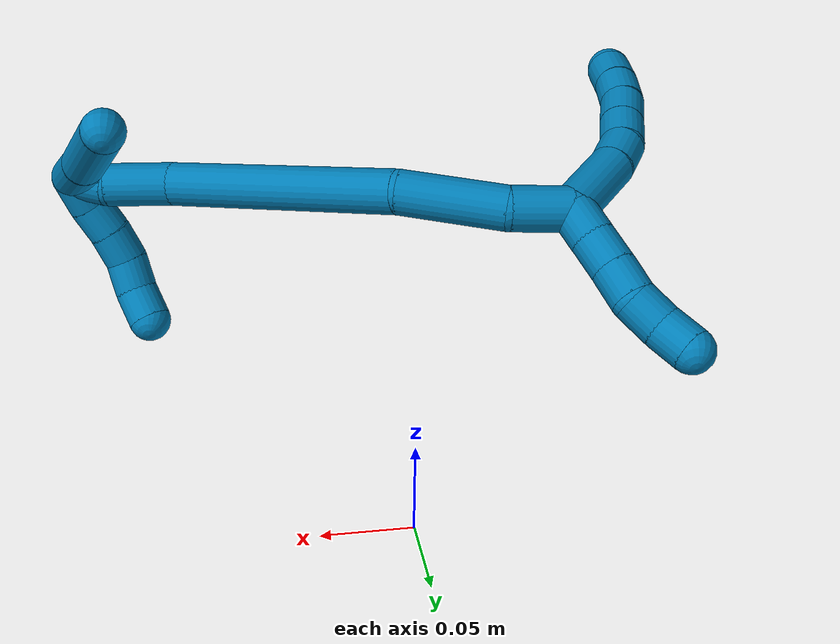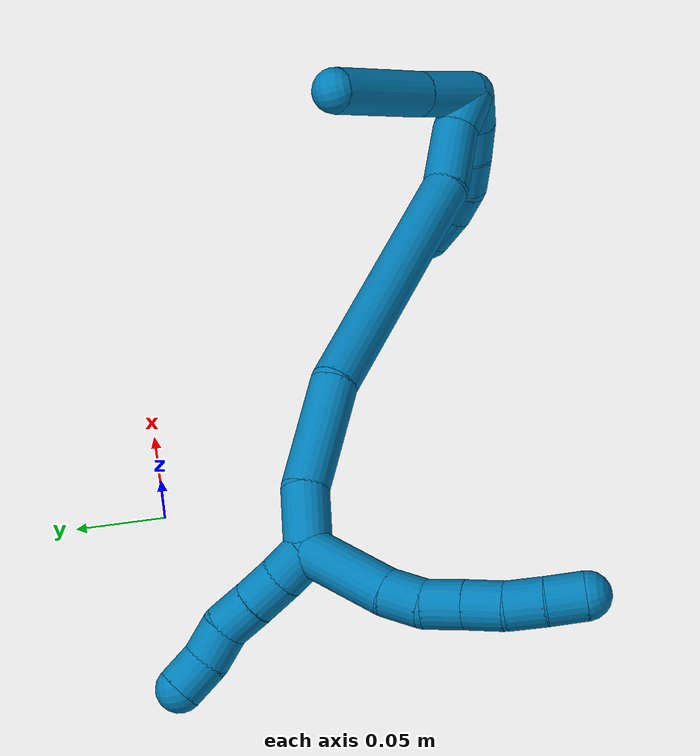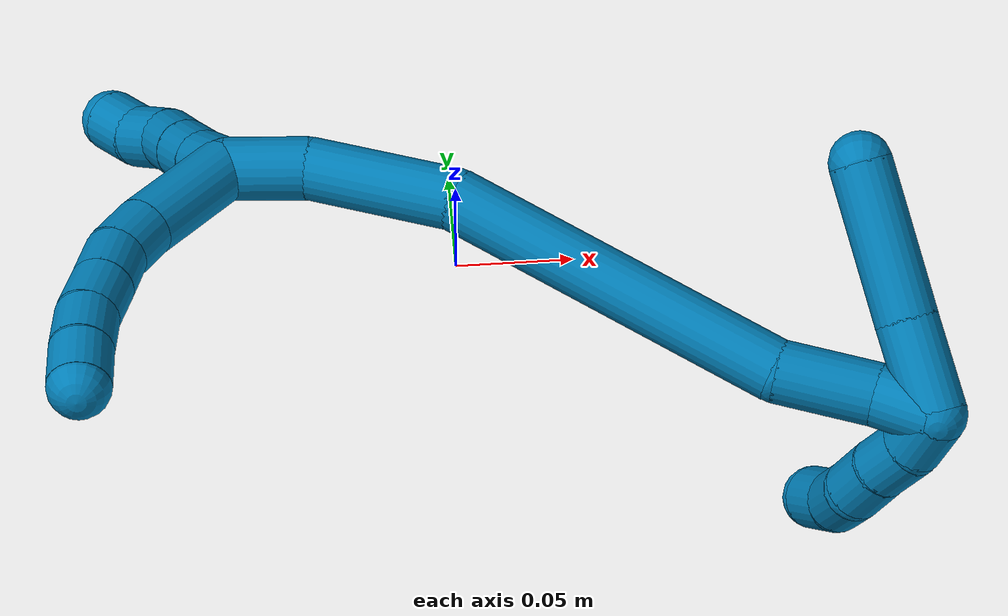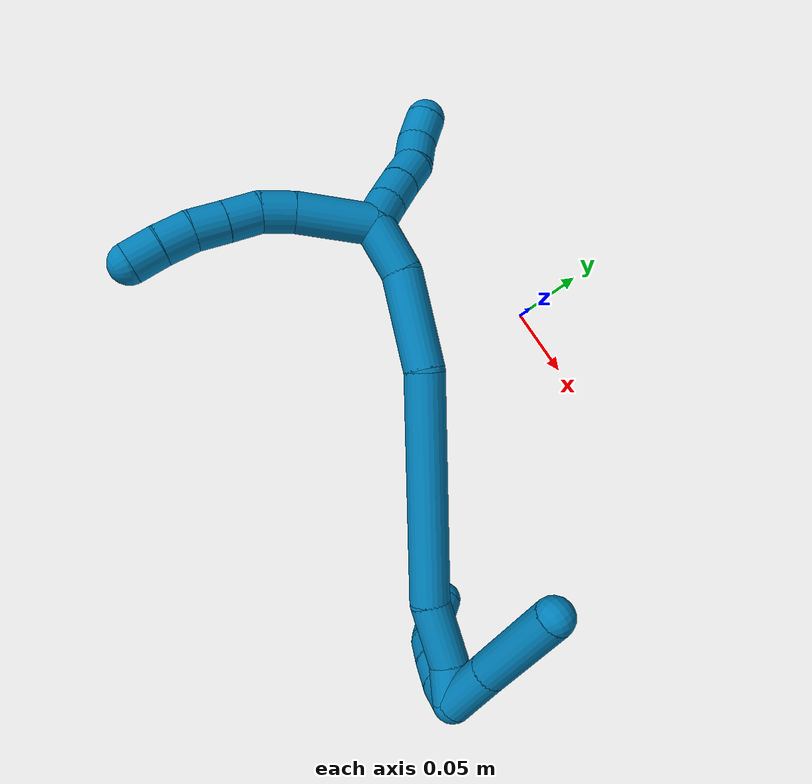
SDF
<sdf version="1.7">
 <world name="default">
  <model name="9">
   <static>0</static>
   <link name="9">
    <collision name="collision-cylinder-e_1_2_8">
     <pose>-0.014514 0.002232 0.018981 -0.117075 -0.649505 0.039456</pose>
     <geometry><cylinder><radius>0.0125</radius><length>0.047996</length></cylinder></geometry>
     <surface>
      <friction><ode><mu>1.16</mu><mu2>1.16</mu2><slip1>0</slip1><slip2>0</slip2></ode></friction>
      <contact><ode><kp>1e+06</kp><kd>1</kd><max_vel>0</max_vel><min_depth>0.001</min_depth></ode></contact>
     </surface>
    </collision>
    <visual name="visual-cylinder-e_1_2_8">
     <pose>-0.014514 0.002232 0.018981 -0.117075 -0.649505 0.039456</pose>
     <geometry><cylinder><radius>0.0125</radius><length>0.047996</length></cylinder></geometry>
     <material><ambient>0 0.490196 0.709804 1</ambient></material>
    </visual>
    <collision name="collision-cylinder-e_2_8_9">
     <pose>-0.033796 0.00529 0.047155 -0.089495 -0.476804 0.021763</pose>
     <geometry><cylinder><radius>0.0125</radius><length>0.020779</length></cylinder></geometry>
     <surface>
      <friction><ode><mu>1.16</mu><mu2>1.16</mu2><slip1>0</slip1><slip2>0</slip2></ode></friction>
      <contact><ode><kp>1e+06</kp><kd>1</kd><max_vel>0</max_vel><min_depth>0.001</min_depth></ode></contact>
     </surface>
    </collision>
    <visual name="visual-cylinder-e_2_8_9">
     <pose>-0.033796 0.00529 0.047155 -0.089495 -0.476804 0.021763</pose>
     <geometry><cylinder><radius>0.0125</radius><length>0.020779</length></cylinder></geometry>
     <material><ambient>0 0.490196 0.709804 1</ambient></material>
    </visual>
    <collision name="collision-cylinder-e_3_9_10">
     <pose>-0.04067 0.005946 0.066514 0.016598 -0.204281 -0.001701</pose>
     <geometry><cylinder><radius>0.0125</radius><length>0.020765</length></cylinder></geometry>
     <surface>
      <friction><ode><mu>1.16</mu><mu2>1.16</mu2><slip1>0</slip1><slip2>0</slip2></ode></friction>
      <contact><ode><kp>1e+06</kp><kd>1</kd><max_vel>0</max_vel><min_depth>0.001</min_depth></ode></contact>
     </surface>
    </collision>
    <visual name="visual-cylinder-e_3_9_10">
     <pose>-0.04067 0.005946 0.066514 0.016598 -0.204281 -0.001701</pose>
     <geometry><cylinder><radius>0.0125</radius><length>0.020765</length></cylinder></geometry>
     <material><ambient>0 0.490196 0.709804 1</ambient></material>
    </visual>
    <collision name="collision-cylinder-e_4_10_11">
     <pose>-0.045059 0.005602 0.086595 0.017679 -0.226251 -0.002009</pose>
     <geometry><cylinder><radius>0.0125</radius><length>0.020352</length></cylinder></geometry>
     <surface>
      <friction><ode><mu>1.16</mu><mu2>1.16</mu2><slip1>0</slip1><slip2>0</slip2></ode></friction>
      <contact><ode><kp>1e+06</kp><kd>1</kd><max_vel>0</max_vel><min_depth>0.001</min_depth></ode></contact>
     </surface>
    </collision>
    <visual name="visual-cylinder-e_4_10_11">
     <pose>-0.045059 0.005602 0.086595 0.017679 -0.226251 -0.002009</pose>
     <geometry><cylinder><radius>0.0125</radius><length>0.020352</length></cylinder></geometry>
     <material><ambient>0 0.490196 0.709804 1</ambient></material>
    </visual>
    <collision name="collision-cylinder-e_5_11_12">
     <pose>-0.048082 0.004369 0.106479 0.105743 -0.073654 -0.0039</pose>
     <geometry><cylinder><radius>0.0125</radius><length>0.020104</length></cylinder></geometry>
     <surface>
      <friction><ode><mu>1.16</mu><mu2>1.16</mu2><slip1>0</slip1><slip2>0</slip2></ode></friction>
      <contact><ode><kp>1e+06</kp><kd>1</kd><max_vel>0</max_vel><min_depth>0.001</min_depth></ode></contact>
     </surface>
    </collision>
    <visual name="visual-cylinder-e_5_11_12">
     <pose>-0.048082 0.004369 0.106479 0.105743 -0.073654 -0.0039</pose>
     <geometry><cylinder><radius>0.0125</radius><length>0.020104</length></cylinder></geometry>
     <material><ambient>0 0.490196 0.709804 1</ambient></material>
    </visual>
    <collision name="collision-cylinder-e_6_12_6">
     <pose>-0.049198 0.001406 0.12626 0.191695 -0.037631 -0.003618</pose>
     <geometry><cylinder><radius>0.0125</radius><length>0.020003</length></cylinder></geometry>
     <surface>
      <friction><ode><mu>1.16</mu><mu2>1.16</mu2><slip1>0</slip1><slip2>0</slip2></ode></friction>
      <contact><ode><kp>1e+06</kp><kd>1</kd><max_vel>0</max_vel><min_depth>0.001</min_depth></ode></contact>
     </surface>
    </collision>
    <visual name="visual-cylinder-e_6_12_6">
     <pose>-0.049198 0.001406 0.12626 0.191695 -0.037631 -0.003618</pose>
     <geometry><cylinder><radius>0.0125</radius><length>0.020003</length></cylinder></geometry>
     <material><ambient>0 0.490196 0.709804 1</ambient></material>
    </visual>
    <collision name="collision-cylinder-e_1_2_13">
     <pose>-0.005175 -0.001402 -0.008441 2.97704 -0.543879 -2.56653</pose>
     <geometry><cylinder><radius>0.0125</radius><length>0.02</length></cylinder></geometry>
     <surface>
      <friction><ode><mu>1.16</mu><mu2>1.16</mu2><slip1>0</slip1><slip2>0</slip2></ode></friction>
      <contact><ode><kp>1e+06</kp><kd>1</kd><max_vel>0</max_vel><min_depth>0.001</min_depth></ode></contact>
     </surface>
    </collision>
    <visual name="visual-cylinder-e_1_2_13">
     <pose>-0.005175 -0.001402 -0.008441 2.97704 -0.543879 -2.56653</pose>
     <geometry><cylinder><radius>0.0125</radius><length>0.02</length></cylinder></geometry>
     <material><ambient>0 0.490196 0.709804 1</ambient></material>
    </visual>
    <collision name="collision-cylinder-e_2_13_14">
     <pose>-0.015115 -0.003723 -0.025626 3.03675 -0.496749 -2.73359</pose>
     <geometry><cylinder><radius>0.0125</radius><length>0.02</length></cylinder></geometry>
     <surface>
      <friction><ode><mu>1.16</mu><mu2>1.16</mu2><slip1>0</slip1><slip2>0</slip2></ode></friction>
      <contact><ode><kp>1e+06</kp><kd>1</kd><max_vel>0</max_vel><min_depth>0.001</min_depth></ode></contact>
     </surface>
    </collision>
    <visual name="visual-cylinder-e_2_13_14">
     <pose>-0.015115 -0.003723 -0.025626 3.03675 -0.496749 -2.73359</pose>
     <geometry><cylinder><radius>0.0125</radius><length>0.02</length></cylinder></geometry>
     <material><ambient>0 0.490196 0.709804 1</ambient></material>
    </visual>
    <collision name="collision-cylinder-e_3_14_15">
     <pose>-0.024357 -0.005692 -0.04325 3.02412 -0.46407 -2.65377</pose>
     <geometry><cylinder><radius>0.0125</radius><length>0.02</length></cylinder></geometry>
     <surface>
      <friction><ode><mu>1.16</mu><mu2>1.16</mu2><slip1>0</slip1><slip2>0</slip2></ode></friction>
      <contact><ode><kp>1e+06</kp><kd>1</kd><max_vel>0</max_vel><min_depth>0.001</min_depth></ode></contact>
     </surface>
    </collision>
    <visual name="visual-cylinder-e_3_14_15">
     <pose>-0.024357 -0.005692 -0.04325 3.02412 -0.46407 -2.65377</pose>
     <geometry><cylinder><radius>0.0125</radius><length>0.02</length></cylinder></geometry>
     <material><ambient>0 0.490196 0.709804 1</ambient></material>
    </visual>
    <collision name="collision-cylinder-e_4_15_16">
     <pose>-0.03601 -0.00773 -0.059022 2.99889 -0.800644 -2.80697</pose>
     <geometry><cylinder><radius>0.0125</radius><length>0.02</length></cylinder></geometry>
     <surface>
      <friction><ode><mu>1.16</mu><mu2>1.16</mu2><slip1>0</slip1><slip2>0</slip2></ode></friction>
      <contact><ode><kp>1e+06</kp><kd>1</kd><max_vel>0</max_vel><min_depth>0.001</min_depth></ode></contact>
     </surface>
    </collision>
    <visual name="visual-cylinder-e_4_15_16">
     <pose>-0.03601 -0.00773 -0.059022 2.99889 -0.800644 -2.80697</pose>
     <geometry><cylinder><radius>0.0125</radius><length>0.02</length></cylinder></geometry>
     <material><ambient>0 0.490196 0.709804 1</ambient></material>
    </visual>
    <collision name="collision-cylinder-e_5_16_5">
     <pose>-0.049243 -0.007417 -0.073766 -2.97718 -0.650335 2.66221</pose>
     <geometry><cylinder><radius>0.0125</radius><length>0.02</length></cylinder></geometry>
     <surface>
      <friction><ode><mu>1.16</mu><mu2>1.16</mu2><slip1>0</slip1><slip2>0</slip2></ode></friction>
      <contact><ode><kp>1e+06</kp><kd>1</kd><max_vel>0</max_vel><min_depth>0.001</min_depth></ode></contact>
     </surface>
    </collision>
    <visual name="visual-cylinder-e_5_16_5">
     <pose>-0.049243 -0.007417 -0.073766 -2.97718 -0.650335 2.66221</pose>
     <geometry><cylinder><radius>0.0125</radius><length>0.02</length></cylinder></geometry>
     <material><ambient>0 0.490196 0.709804 1</ambient></material>
    </visual>
    <collision name="collision-cylinder-e_1_2_17">
     <pose>0.01604 -0.004816 0.000508 1.46572 1.27761 1.17851</pose>
     <geometry><cylinder><radius>0.0125</radius><length>0.033511</length></cylinder></geometry>
     <surface>
      <friction><ode><mu>1.16</mu><mu2>1.16</mu2><slip1>0</slip1><slip2>0</slip2></ode></friction>
      <contact><ode><kp>1e+06</kp><kd>1</kd><max_vel>0</max_vel><min_depth>0.001</min_depth></ode></contact>
     </surface>
    </collision>
    <visual name="visual-cylinder-e_1_2_17">
     <pose>0.01604 -0.004816 0.000508 1.46572 1.27761 1.17851</pose>
     <geometry><cylinder><radius>0.0125</radius><length>0.033511</length></cylinder></geometry>
     <material><ambient>0 0.490196 0.709804 1</ambient></material>
    </visual>
    <collision name="collision-cylinder-e_2_17_18">
     <pose>0.05884 -0.02011 0.010458 0.837404 1.08569 0.524589</pose>
     <geometry><cylinder><radius>0.0125</radius><length>0.060498</length></cylinder></geometry>
     <surface>
      <friction><ode><mu>1.16</mu><mu2>1.16</mu2><slip1>0</slip1><slip2>0</slip2></ode></friction>
      <contact><ode><kp>1e+06</kp><kd>1</kd><max_vel>0</max_vel><min_depth>0.001</min_depth></ode></contact>
     </surface>
    </collision>
    <visual name="visual-cylinder-e_2_17_18">
     <pose>0.05884 -0.02011 0.010458 0.837404 1.08569 0.524589</pose>
     <geometry><cylinder><radius>0.0125</radius><length>0.060498</length></cylinder></geometry>
     <material><ambient>0 0.490196 0.709804 1</ambient></material>
    </visual>
    <collision name="collision-cylinder-e_3_18_19">
     <pose>0.137439 -0.06993 0.048844 0.936499 0.815179 0.429997</pose>
     <geometry><cylinder><radius>0.0125</radius><length>0.14245</length></cylinder></geometry>
     <surface>
      <friction><ode><mu>1.16</mu><mu2>1.16</mu2><slip1>0</slip1><slip2>0</slip2></ode></friction>
      <contact><ode><kp>1e+06</kp><kd>1</kd><max_vel>0</max_vel><min_depth>0.001</min_depth></ode></contact>
     </surface>
    </collision>
    <visual name="visual-cylinder-e_3_18_19">
     <pose>0.137439 -0.06993 0.048844 0.936499 0.815179 0.429997</pose>
     <geometry><cylinder><radius>0.0125</radius><length>0.14245</length></cylinder></geometry>
     <material><ambient>0 0.490196 0.709804 1</ambient></material>
    </visual>
    <collision name="collision-cylinder-e_4_19_20">
     <pose>0.206573 -0.118097 0.081548 1.16803 1.0643 0.742246</pose>
     <geometry><cylinder><radius>0.0125</radius><length>0.03955</length></cylinder></geometry>
     <surface>
      <friction><ode><mu>1.16</mu><mu2>1.16</mu2><slip1>0</slip1><slip2>0</slip2></ode></friction>
      <contact><ode><kp>1e+06</kp><kd>1</kd><max_vel>0</max_vel><min_depth>0.001</min_depth></ode></contact>
     </surface>
    </collision>
    <visual name="visual-cylinder-e_4_19_20">
     <pose>0.206573 -0.118097 0.081548 1.16803 1.0643 0.742246</pose>
     <geometry><cylinder><radius>0.0125</radius><length>0.03955</length></cylinder></geometry>
     <material><ambient>0 0.490196 0.709804 1</ambient></material>
    </visual>
    <collision name="collision-cylinder-e_5_20_1">
     <pose>0.23373 -0.131406 0.090454 0.716681 0.965572 0.387674</pose>
     <geometry><cylinder><radius>0.0125</radius><length>0.023992</length></cylinder></geometry>
     <surface>
      <friction><ode><mu>1.16</mu><mu2>1.16</mu2><slip1>0</slip1><slip2>0</slip2></ode></friction>
      <contact><ode><kp>1e+06</kp><kd>1</kd><max_vel>0</max_vel><min_depth>0.001</min_depth></ode></contact>
     </surface>
    </collision>
    <visual name="visual-cylinder-e_5_20_1">
     <pose>0.23373 -0.131406 0.090454 0.716681 0.965572 0.387674</pose>
     <geometry><cylinder><radius>0.0125</radius><length>0.023992</length></cylinder></geometry>
     <material><ambient>0 0.490196 0.709804 1</ambient></material>
    </visual>
    <collision name="collision-cylinder-e_1_1_21">
     <pose>0.237072 -0.143007 0.092993 1.92188 -0.710629 -0.976387</pose>
     <geometry><cylinder><radius>0.0125</radius><length>0.02</length></cylinder></geometry>
     <surface>
      <friction><ode><mu>1.16</mu><mu2>1.16</mu2><slip1>0</slip1><slip2>0</slip2></ode></friction>
      <contact><ode><kp>1e+06</kp><kd>1</kd><max_vel>0</max_vel><min_depth>0.001</min_depth></ode></contact>
     </surface>
    </collision>
    <visual name="visual-cylinder-e_1_1_21">
     <pose>0.237072 -0.143007 0.092993 1.92188 -0.710629 -0.976387</pose>
     <geometry><cylinder><radius>0.0125</radius><length>0.02</length></cylinder></geometry>
     <material><ambient>0 0.490196 0.709804 1</ambient></material>
    </visual>
    <collision name="collision-cylinder-e_2_21_22">
     <pose>0.223115 -0.15558 0.086518 2.18756 -0.838156 -1.42276</pose>
     <geometry><cylinder><radius>0.0125</radius><length>0.02</length></cylinder></geometry>
     <surface>
      <friction><ode><mu>1.16</mu><mu2>1.16</mu2><slip1>0</slip1><slip2>0</slip2></ode></friction>
      <contact><ode><kp>1e+06</kp><kd>1</kd><max_vel>0</max_vel><min_depth>0.001</min_depth></ode></contact>
     </surface>
    </collision>
    <visual name="visual-cylinder-e_2_21_22">
     <pose>0.223115 -0.15558 0.086518 2.18756 -0.838156 -1.42276</pose>
     <geometry><cylinder><radius>0.0125</radius><length>0.02</length></cylinder></geometry>
     <material><ambient>0 0.490196 0.709804 1</ambient></material>
    </visual>
    <collision name="collision-cylinder-e_3_22_23">
     <pose>0.208996 -0.167128 0.078383 2.18174 -0.732179 -1.26963</pose>
     <geometry><cylinder><radius>0.0125</radius><length>0.02</length></cylinder></geometry>
     <surface>
      <friction><ode><mu>1.16</mu><mu2>1.16</mu2><slip1>0</slip1><slip2>0</slip2></ode></friction>
      <contact><ode><kp>1e+06</kp><kd>1</kd><max_vel>0</max_vel><min_depth>0.001</min_depth></ode></contact>
     </surface>
    </collision>
    <visual name="visual-cylinder-e_3_22_23">
     <pose>0.208996 -0.167128 0.078383 2.18174 -0.732179 -1.26963</pose>
     <geometry><cylinder><radius>0.0125</radius><length>0.02</length></cylinder></geometry>
     <material><ambient>0 0.490196 0.709804 1</ambient></material>
    </visual>
    <collision name="collision-cylinder-e_4_23_24">
     <pose>0.197595 -0.179026 0.06748 2.42282 -0.49104 -1.1764</pose>
     <geometry><cylinder><radius>0.0125</radius><length>0.02</length></cylinder></geometry>
     <surface>
      <friction><ode><mu>1.16</mu><mu2>1.16</mu2><slip1>0</slip1><slip2>0</slip2></ode></friction>
      <contact><ode><kp>1e+06</kp><kd>1</kd><max_vel>0</max_vel><min_depth>0.001</min_depth></ode></contact>
     </surface>
    </collision>
    <visual name="visual-cylinder-e_4_23_24">
     <pose>0.197595 -0.179026 0.06748 2.42282 -0.49104 -1.1764</pose>
     <geometry><cylinder><radius>0.0125</radius><length>0.02</length></cylinder></geometry>
     <material><ambient>0 0.490196 0.709804 1</ambient></material>
    </visual>
    <collision name="collision-cylinder-e_5_24_4">
     <pose>0.187823 -0.187776 0.052734 2.79341 -0.53024 -1.99201</pose>
     <geometry><cylinder><radius>0.0125</radius><length>0.02</length></cylinder></geometry>
     <surface>
      <friction><ode><mu>1.16</mu><mu2>1.16</mu2><slip1>0</slip1><slip2>0</slip2></ode></friction>
      <contact><ode><kp>1e+06</kp><kd>1</kd><max_vel>0</max_vel><min_depth>0.001</min_depth></ode></contact>
     </surface>
    </collision>
    <visual name="visual-cylinder-e_5_24_4">
     <pose>0.187823 -0.187776 0.052734 2.79341 -0.53024 -1.99201</pose>
     <geometry><cylinder><radius>0.0125</radius><length>0.02</length></cylinder></geometry>
     <material><ambient>0 0.490196 0.709804 1</ambient></material>
    </visual>
    <collision name="collision-cylinder-e_1_1_25">
     <pose>0.243025 -0.120547 0.084992 -2.17574 -0.030541 0.058234</pose>
     <geometry><cylinder><radius>0.0125</radius><length>0.037322</length></cylinder></geometry>
     <surface>
      <friction><ode><mu>1.16</mu><mu2>1.16</mu2><slip1>0</slip1><slip2>0</slip2></ode></friction>
      <contact><ode><kp>1e+06</kp><kd>1</kd><max_vel>0</max_vel><min_depth>0.001</min_depth></ode></contact>
     </surface>
    </collision>
    <visual name="visual-cylinder-e_1_1_25">
     <pose>0.243025 -0.120547 0.084992 -2.17574 -0.030541 0.058234</pose>
     <geometry><cylinder><radius>0.0125</radius><length>0.037322</length></cylinder></geometry>
     <material><ambient>0 0.490196 0.709804 1</ambient></material>
    </visual>
    <collision name="collision-cylinder-e_2_25_3">
     <pose>0.242016 -0.078316 0.058293 -2.11008 -0.014024 0.024735</pose>
     <geometry><cylinder><radius>0.0125</radius><length>0.062678</length></cylinder></geometry>
     <surface>
      <friction><ode><mu>1.16</mu><mu2>1.16</mu2><slip1>0</slip1><slip2>0</slip2></ode></friction>
      <contact><ode><kp>1e+06</kp><kd>1</kd><max_vel>0</max_vel><min_depth>0.001</min_depth></ode></contact>
     </surface>
    </collision>
    <visual name="visual-cylinder-e_2_25_3">
     <pose>0.242016 -0.078316 0.058293 -2.11008 -0.014024 0.024735</pose>
     <geometry><cylinder><radius>0.0125</radius><length>0.062678</length></cylinder></geometry>
     <material><ambient>0 0.490196 0.709804 1</ambient></material>
    </visual>
    <collision name="collision-sphere-3">
     <pose>0.241576 -0.051428 0.042201 0 -0 0</pose>
     <geometry><sphere><radius>0.0125</radius></sphere></geometry>
     <surface>
      <friction><ode><mu>1.16</mu><mu2>1.16</mu2><slip1>0</slip1><slip2>0</slip2></ode></friction>
      <contact><ode><kp>1e+06</kp><kd>1</kd><max_vel>0</max_vel><min_depth>0.001</min_depth></ode></contact>
     </surface>
    </collision>
    <visual name="visual-sphere-3">
     <pose>0.241576 -0.051428 0.042201 0 -0 0</pose>
     <geometry><sphere><radius>0.0125</radius></sphere></geometry>
     <material><ambient>0 0.490196 0.709804 1</ambient></material>
    </visual>
    <collision name="collision-sphere-25">
     <pose>0.242455 -0.105205 0.074384 0 -0 0</pose>
     <geometry><sphere><radius>0.0125</radius></sphere></geometry>
     <surface>
      <friction><ode><mu>1.16</mu><mu2>1.16</mu2><slip1>0</slip1><slip2>0</slip2></ode></friction>
      <contact><ode><kp>1e+06</kp><kd>1</kd><max_vel>0</max_vel><min_depth>0.001</min_depth></ode></contact>
     </surface>
    </collision>
    <visual name="visual-sphere-25">
     <pose>0.242455 -0.105205 0.074384 0 -0 0</pose>
     <geometry><sphere><radius>0.0125</radius></sphere></geometry>
     <material><ambient>0 0.490196 0.709804 1</ambient></material>
    </visual>
    <collision name="collision-sphere-4">
     <pose>0.182765 -0.19072 0.044625 0 -0 0</pose>
     <geometry><sphere><radius>0.0125</radius></sphere></geometry>
     <surface>
      <friction><ode><mu>1.16</mu><mu2>1.16</mu2><slip1>0</slip1><slip2>0</slip2></ode></friction>
      <contact><ode><kp>1e+06</kp><kd>1</kd><max_vel>0</max_vel><min_depth>0.001</min_depth></ode></contact>
     </surface>
    </collision>
    <visual name="visual-sphere-4">
     <pose>0.182765 -0.19072 0.044625 0 -0 0</pose>
     <geometry><sphere><radius>0.0125</radius></sphere></geometry>
     <material><ambient>0 0.490196 0.709804 1</ambient></material>
    </visual>
    <collision name="collision-sphere-24">
     <pose>0.19288 -0.184833 0.060843 0 -0 0</pose>
     <geometry><sphere><radius>0.0125</radius></sphere></geometry>
     <surface>
      <friction><ode><mu>1.16</mu><mu2>1.16</mu2><slip1>0</slip1><slip2>0</slip2></ode></friction>
      <contact><ode><kp>1e+06</kp><kd>1</kd><max_vel>0</max_vel><min_depth>0.001</min_depth></ode></contact>
     </surface>
    </collision>
    <visual name="visual-sphere-24">
     <pose>0.19288 -0.184833 0.060843 0 -0 0</pose>
     <geometry><sphere><radius>0.0125</radius></sphere></geometry>
     <material><ambient>0 0.490196 0.709804 1</ambient></material>
    </visual>
    <collision name="collision-sphere-23">
     <pose>0.202311 -0.17322 0.074117 0 -0 0</pose>
     <geometry><sphere><radius>0.0125</radius></sphere></geometry>
     <surface>
      <friction><ode><mu>1.16</mu><mu2>1.16</mu2><slip1>0</slip1><slip2>0</slip2></ode></friction>
      <contact><ode><kp>1e+06</kp><kd>1</kd><max_vel>0</max_vel><min_depth>0.001</min_depth></ode></contact>
     </surface>
    </collision>
    <visual name="visual-sphere-23">
     <pose>0.202311 -0.17322 0.074117 0 -0 0</pose>
     <geometry><sphere><radius>0.0125</radius></sphere></geometry>
     <material><ambient>0 0.490196 0.709804 1</ambient></material>
    </visual>
    <collision name="collision-sphere-22">
     <pose>0.215681 -0.161036 0.08265 0 -0 0</pose>
     <geometry><sphere><radius>0.0125</radius></sphere></geometry>
     <surface>
      <friction><ode><mu>1.16</mu><mu2>1.16</mu2><slip1>0</slip1><slip2>0</slip2></ode></friction>
      <contact><ode><kp>1e+06</kp><kd>1</kd><max_vel>0</max_vel><min_depth>0.001</min_depth></ode></contact>
     </surface>
    </collision>
    <visual name="visual-sphere-22">
     <pose>0.215681 -0.161036 0.08265 0 -0 0</pose>
     <geometry><sphere><radius>0.0125</radius></sphere></geometry>
     <material><ambient>0 0.490196 0.709804 1</ambient></material>
    </visual>
    <collision name="collision-sphere-21">
     <pose>0.230549 -0.150124 0.090387 0 -0 0</pose>
     <geometry><sphere><radius>0.0125</radius></sphere></geometry>
     <surface>
      <friction><ode><mu>1.16</mu><mu2>1.16</mu2><slip1>0</slip1><slip2>0</slip2></ode></friction>
      <contact><ode><kp>1e+06</kp><kd>1</kd><max_vel>0</max_vel><min_depth>0.001</min_depth></ode></contact>
     </surface>
    </collision>
    <visual name="visual-sphere-21">
     <pose>0.230549 -0.150124 0.090387 0 -0 0</pose>
     <geometry><sphere><radius>0.0125</radius></sphere></geometry>
     <material><ambient>0 0.490196 0.709804 1</ambient></material>
    </visual>
    <collision name="collision-sphere-1">
     <pose>0.243595 -0.135889 0.0956 0 -0 0</pose>
     <geometry><sphere><radius>0.0125</radius></sphere></geometry>
     <surface>
      <friction><ode><mu>1.16</mu><mu2>1.16</mu2><slip1>0</slip1><slip2>0</slip2></ode></friction>
      <contact><ode><kp>1e+06</kp><kd>1</kd><max_vel>0</max_vel><min_depth>0.001</min_depth></ode></contact>
     </surface>
    </collision>
    <visual name="visual-sphere-1">
     <pose>0.243595 -0.135889 0.0956 0 -0 0</pose>
     <geometry><sphere><radius>0.0125</radius></sphere></geometry>
     <material><ambient>0 0.490196 0.709804 1</ambient></material>
    </visual>
    <collision name="collision-sphere-12">
     <pose>-0.048821 0.00331 0.116448 0 -0 0</pose>
     <geometry><sphere><radius>0.0125</radius></sphere></geometry>
     <surface>
      <friction><ode><mu>1.16</mu><mu2>1.16</mu2><slip1>0</slip1><slip2>0</slip2></ode></friction>
      <contact><ode><kp>1e+06</kp><kd>1</kd><max_vel>0</max_vel><min_depth>0.001</min_depth></ode></contact>
     </surface>
    </collision>
    <visual name="visual-sphere-12">
     <pose>-0.048821 0.00331 0.116448 0 -0 0</pose>
     <geometry><sphere><radius>0.0125</radius></sphere></geometry>
     <material><ambient>0 0.490196 0.709804 1</ambient></material>
    </visual>
    <collision name="collision-sphere-11">
     <pose>-0.047342 0.005427 0.09651 0 -0 0</pose>
     <geometry><sphere><radius>0.0125</radius></sphere></geometry>
     <surface>
      <friction><ode><mu>1.16</mu><mu2>1.16</mu2><slip1>0</slip1><slip2>0</slip2></ode></friction>
      <contact><ode><kp>1e+06</kp><kd>1</kd><max_vel>0</max_vel><min_depth>0.001</min_depth></ode></contact>
     </surface>
    </collision>
    <visual name="visual-sphere-11">
     <pose>-0.047342 0.005427 0.09651 0 -0 0</pose>
     <geometry><sphere><radius>0.0125</radius></sphere></geometry>
     <material><ambient>0 0.490196 0.709804 1</ambient></material>
    </visual>
    <collision name="collision-sphere-10">
     <pose>-0.042776 0.005777 0.07668 0 -0 0</pose>
     <geometry><sphere><radius>0.0125</radius></sphere></geometry>
     <surface>
      <friction><ode><mu>1.16</mu><mu2>1.16</mu2><slip1>0</slip1><slip2>0</slip2></ode></friction>
      <contact><ode><kp>1e+06</kp><kd>1</kd><max_vel>0</max_vel><min_depth>0.001</min_depth></ode></contact>
     </surface>
    </collision>
    <visual name="visual-sphere-10">
     <pose>-0.042776 0.005777 0.07668 0 -0 0</pose>
     <geometry><sphere><radius>0.0125</radius></sphere></geometry>
     <material><ambient>0 0.490196 0.709804 1</ambient></material>
    </visual>
    <collision name="collision-sphere-9">
     <pose>-0.038564 0.006115 0.056349 0 -0 0</pose>
     <geometry><sphere><radius>0.0125</radius></sphere></geometry>
     <surface>
      <friction><ode><mu>1.16</mu><mu2>1.16</mu2><slip1>0</slip1><slip2>0</slip2></ode></friction>
      <contact><ode><kp>1e+06</kp><kd>1</kd><max_vel>0</max_vel><min_depth>0.001</min_depth></ode></contact>
     </surface>
    </collision>
    <visual name="visual-sphere-9">
     <pose>-0.038564 0.006115 0.056349 0 -0 0</pose>
     <geometry><sphere><radius>0.0125</radius></sphere></geometry>
     <material><ambient>0 0.490196 0.709804 1</ambient></material>
    </visual>
    <collision name="collision-sphere-2">
     <geometry><sphere><radius>0.0125</radius></sphere></geometry>
     <surface>
      <friction><ode><mu>1.16</mu><mu2>1.16</mu2><slip1>0</slip1><slip2>0</slip2></ode></friction>
      <contact><ode><kp>1e+06</kp><kd>1</kd><max_vel>0</max_vel><min_depth>0.001</min_depth></ode></contact>
     </surface>
    </collision>
    <visual name="visual-sphere-2">
     <geometry><sphere><radius>0.0125</radius></sphere></geometry>
     <material><ambient>0 0.490196 0.709804 1</ambient></material>
    </visual>
    <collision name="collision-sphere-19">
     <pose>0.18928 -0.109272 0.077788 0 -0 0</pose>
     <geometry><sphere><radius>0.0125</radius></sphere></geometry>
     <surface>
      <friction><ode><mu>1.16</mu><mu2>1.16</mu2><slip1>0</slip1><slip2>0</slip2></ode></friction>
      <contact><ode><kp>1e+06</kp><kd>1</kd><max_vel>0</max_vel><min_depth>0.001</min_depth></ode></contact>
     </surface>
    </collision>
    <visual name="visual-sphere-19">
     <pose>0.18928 -0.109272 0.077788 0 -0 0</pose>
     <geometry><sphere><radius>0.0125</radius></sphere></geometry>
     <material><ambient>0 0.490196 0.709804 1</ambient></material>
    </visual>
    <collision name="collision-sphere-8">
     <pose>-0.029027 0.004465 0.037961 0 -0 0</pose>
     <geometry><sphere><radius>0.0125</radius></sphere></geometry>
     <surface>
      <friction><ode><mu>1.16</mu><mu2>1.16</mu2><slip1>0</slip1><slip2>0</slip2></ode></friction>
      <contact><ode><kp>1e+06</kp><kd>1</kd><max_vel>0</max_vel><min_depth>0.001</min_depth></ode></contact>
     </surface>
    </collision>
    <visual name="visual-sphere-8">
     <pose>-0.029027 0.004465 0.037961 0 -0 0</pose>
     <geometry><sphere><radius>0.0125</radius></sphere></geometry>
     <material><ambient>0 0.490196 0.709804 1</ambient></material>
    </visual>
    <collision name="collision-sphere-6">
     <pose>-0.049574 -0.000498 0.136071 0 -0 0</pose>
     <geometry><sphere><radius>0.0125</radius></sphere></geometry>
     <surface>
      <friction><ode><mu>1.16</mu><mu2>1.16</mu2><slip1>0</slip1><slip2>0</slip2></ode></friction>
      <contact><ode><kp>1e+06</kp><kd>1</kd><max_vel>0</max_vel><min_depth>0.001</min_depth></ode></contact>
     </surface>
    </collision>
    <visual name="visual-sphere-6">
     <pose>-0.049574 -0.000498 0.136071 0 -0 0</pose>
     <geometry><sphere><radius>0.0125</radius></sphere></geometry>
     <material><ambient>0 0.490196 0.709804 1</ambient></material>
    </visual>
    <collision name="collision-sphere-13">
     <pose>-0.010349 -0.002803 -0.016883 0 -0 0</pose>
     <geometry><sphere><radius>0.0125</radius></sphere></geometry>
     <surface>
      <friction><ode><mu>1.16</mu><mu2>1.16</mu2><slip1>0</slip1><slip2>0</slip2></ode></friction>
      <contact><ode><kp>1e+06</kp><kd>1</kd><max_vel>0</max_vel><min_depth>0.001</min_depth></ode></contact>
     </surface>
    </collision>
    <visual name="visual-sphere-13">
     <pose>-0.010349 -0.002803 -0.016883 0 -0 0</pose>
     <geometry><sphere><radius>0.0125</radius></sphere></geometry>
     <material><ambient>0 0.490196 0.709804 1</ambient></material>
    </visual>
    <collision name="collision-sphere-14">
     <pose>-0.019881 -0.004643 -0.034369 0 -0 0</pose>
     <geometry><sphere><radius>0.0125</radius></sphere></geometry>
     <surface>
      <friction><ode><mu>1.16</mu><mu2>1.16</mu2><slip1>0</slip1><slip2>0</slip2></ode></friction>
      <contact><ode><kp>1e+06</kp><kd>1</kd><max_vel>0</max_vel><min_depth>0.001</min_depth></ode></contact>
     </surface>
    </collision>
    <visual name="visual-sphere-14">
     <pose>-0.019881 -0.004643 -0.034369 0 -0 0</pose>
     <geometry><sphere><radius>0.0125</radius></sphere></geometry>
     <material><ambient>0 0.490196 0.709804 1</ambient></material>
    </visual>
    <collision name="collision-sphere-15">
     <pose>-0.028832 -0.00674 -0.052131 0 -0 0</pose>
     <geometry><sphere><radius>0.0125</radius></sphere></geometry>
     <surface>
      <friction><ode><mu>1.16</mu><mu2>1.16</mu2><slip1>0</slip1><slip2>0</slip2></ode></friction>
      <contact><ode><kp>1e+06</kp><kd>1</kd><max_vel>0</max_vel><min_depth>0.001</min_depth></ode></contact>
     </surface>
    </collision>
    <visual name="visual-sphere-15">
     <pose>-0.028832 -0.00674 -0.052131 0 -0 0</pose>
     <geometry><sphere><radius>0.0125</radius></sphere></geometry>
     <material><ambient>0 0.490196 0.709804 1</ambient></material>
    </visual>
    <collision name="collision-sphere-16">
     <pose>-0.043189 -0.00872 -0.065914 0 -0 0</pose>
     <geometry><sphere><radius>0.0125</radius></sphere></geometry>
     <surface>
      <friction><ode><mu>1.16</mu><mu2>1.16</mu2><slip1>0</slip1><slip2>0</slip2></ode></friction>
      <contact><ode><kp>1e+06</kp><kd>1</kd><max_vel>0</max_vel><min_depth>0.001</min_depth></ode></contact>
     </surface>
    </collision>
    <visual name="visual-sphere-16">
     <pose>-0.043189 -0.00872 -0.065914 0 -0 0</pose>
     <geometry><sphere><radius>0.0125</radius></sphere></geometry>
     <material><ambient>0 0.490196 0.709804 1</ambient></material>
    </visual>
    <collision name="collision-sphere-5">
     <pose>-0.055298 -0.006115 -0.081617 0 -0 0</pose>
     <geometry><sphere><radius>0.0125</radius></sphere></geometry>
     <surface>
      <friction><ode><mu>1.16</mu><mu2>1.16</mu2><slip1>0</slip1><slip2>0</slip2></ode></friction>
      <contact><ode><kp>1e+06</kp><kd>1</kd><max_vel>0</max_vel><min_depth>0.001</min_depth></ode></contact>
     </surface>
    </collision>
    <visual name="visual-sphere-5">
     <pose>-0.055298 -0.006115 -0.081617 0 -0 0</pose>
     <geometry><sphere><radius>0.0125</radius></sphere></geometry>
     <material><ambient>0 0.490196 0.709804 1</ambient></material>
    </visual>
    <collision name="collision-sphere-17">
     <pose>0.032081 -0.009631 0.001016 0 -0 0</pose>
     <geometry><sphere><radius>0.0125</radius></sphere></geometry>
     <surface>
      <friction><ode><mu>1.16</mu><mu2>1.16</mu2><slip1>0</slip1><slip2>0</slip2></ode></friction>
      <contact><ode><kp>1e+06</kp><kd>1</kd><max_vel>0</max_vel><min_depth>0.001</min_depth></ode></contact>
     </surface>
    </collision>
    <visual name="visual-sphere-17">
     <pose>0.032081 -0.009631 0.001016 0 -0 0</pose>
     <geometry><sphere><radius>0.0125</radius></sphere></geometry>
     <material><ambient>0 0.490196 0.709804 1</ambient></material>
    </visual>
    <collision name="collision-sphere-18">
     <pose>0.085598 -0.030589 0.019899 0 -0 0</pose>
     <geometry><sphere><radius>0.0125</radius></sphere></geometry>
     <surface>
      <friction><ode><mu>1.16</mu><mu2>1.16</mu2><slip1>0</slip1><slip2>0</slip2></ode></friction>
      <contact><ode><kp>1e+06</kp><kd>1</kd><max_vel>0</max_vel><min_depth>0.001</min_depth></ode></contact>
     </surface>
    </collision>
    <visual name="visual-sphere-18">
     <pose>0.085598 -0.030589 0.019899 0 -0 0</pose>
     <geometry><sphere><radius>0.0125</radius></sphere></geometry>
     <material><ambient>0 0.490196 0.709804 1</ambient></material>
    </visual>
    <collision name="collision-sphere-20">
     <pose>0.223865 -0.126923 0.085308 0 -0 0</pose>
     <geometry><sphere><radius>0.0125</radius></sphere></geometry>
     <surface>
      <friction><ode><mu>1.16</mu><mu2>1.16</mu2><slip1>0</slip1><slip2>0</slip2></ode></friction>
      <contact><ode><kp>1e+06</kp><kd>1</kd><max_vel>0</max_vel><min_depth>0.001</min_depth></ode></contact>
     </surface>
    </collision>
    <visual name="visual-sphere-20">
     <pose>0.223865 -0.126923 0.085308 0 -0 0</pose>
     <geometry><sphere><radius>0.0125</radius></sphere></geometry>
     <material><ambient>0 0.490196 0.709804 1</ambient></material>
    </visual>
    <inertial>
     <pose>0.1001 -0.060226 0.043852 0 -0 0</pose>
     <mass>0.75</mass>
     <inertia>
      <ixx>0.000286</ixx>
      <ixy>0</ixy>
      <ixz>0</ixz>
      <iyy>0.000301</iyy>
      <iyz>0</iyz>
      <izz>-6.1e-05</izz>
     </inertia>
    </inertial>
   </link>
   <pose>-0.094411 -0.067307 0.147893 1.21097 -0.295335 0.036328</pose>
  </model>
 </world>
</sdf>
